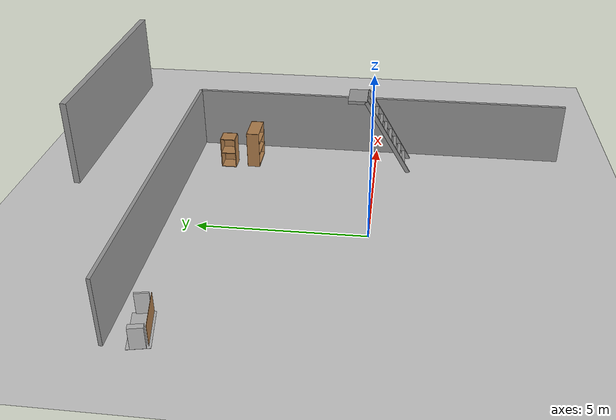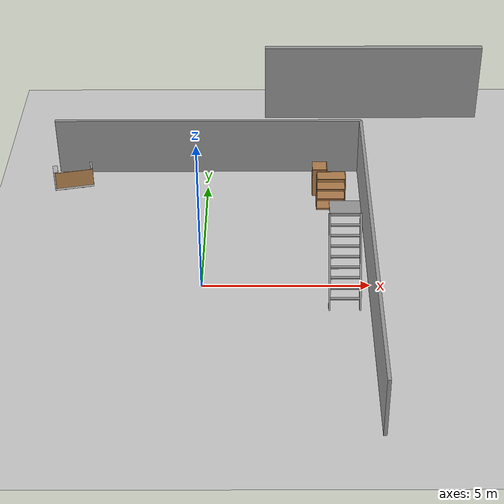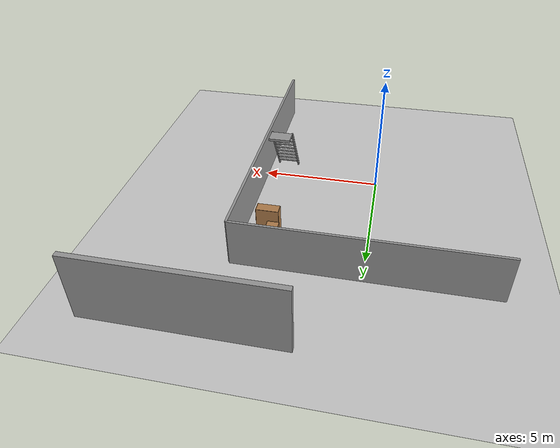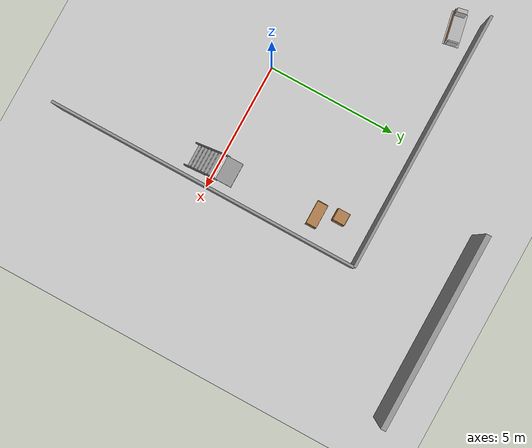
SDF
<sdf version="1.6">
 <world name="default">
  <light name="sun" type="directional">
   <pose>0 0 10 0 -0 0</pose>
   <diffuse>0.8 0.8 0.8 1</diffuse>
   <specular>0.2 0.2 0.2 1</specular>
   <attenuation>
    <range>1000</range>
    <constant>0.9</constant>
    <linear>0.01</linear>
    <quadratic>0.001</quadratic>
   </attenuation>
   <direction>-0.5 0.1 -0.9</direction>
  </light>
  <model name="ground_plane">
   <static>1</static>
   <link name="link">
    <collision name="collision">
     <geometry><plane><normal>0 0 1</normal><size>50 50</size></plane></geometry>
     <surface><friction><ode><mu>100</mu><mu2>50</mu2></ode></friction></surface>
    </collision>
    <visual name="visual">
     <cast_shadows>0</cast_shadows>
     <geometry><plane><normal>0 0 1</normal><size>100 100</size></plane></geometry>
     <material>
      <script><uri>file://media/materials/scripts/gazebo.material</uri><name>Gazebo/Grey</name></script>
     </material>
    </visual>
    <velocity_decay><linear>0</linear><angular>0</angular></velocity_decay>
   </link>
  </model>
  <physics name="default_physics" default="0" type="ode">
   <max_step_size>0.001</max_step_size>
   <real_time_factor>1</real_time_factor>
   <real_time_update_rate>1000</real_time_update_rate>
  </physics>
  <scene><ambient>0.4 0.4 0.4 1</ambient><background>0.7 0.7 0.7 1</background><shadows>0</shadows></scene>
  <model name="grey_wall_2">
   <static>1</static>
   <link name="link">
    <pose>0 6 1 0 -0 0</pose>
    <collision name="collision"><geometry><box><size>10 0.1 2</size></box></geometry></collision>
    <visual name="visual">
     <cast_shadows>0</cast_shadows>
     <geometry><box><size>10 0.1 2</size></box></geometry>
     <material>
      <script>
       <uri>model://grey_wall/materials/scripts</uri>
       <uri>model://grey_wall/materials/textures</uri>
       <name>vrc/grey_wall</name>
      </script>
     </material>
    </visual>
    <velocity_decay><linear>0</linear><angular>0</angular></velocity_decay>
   </link>
  </model>
  <model name="grey_wall_4">
   <static>1</static>
   <link name="link">
    <pose>5 0 1 0 -0 1.571</pose>
    <collision name="collision"><geometry><box><size>12 0.1 2</size></box></geometry></collision>
    <visual name="visual">
     <cast_shadows>0</cast_shadows>
     <geometry><box><size>12 0.1 2</size></box></geometry>
     <material>
      <script>
       <uri>model://grey_wall/materials/scripts</uri>
       <uri>model://grey_wall/materials/textures</uri>
       <name>vrc/grey_wall</name>
      </script>
     </material>
    </visual>
    <velocity_decay><linear>0</linear><angular>0</angular></velocity_decay>
   </link>
  </model>
  <spherical_coordinates>
   <surface_model>EARTH_WGS84</surface_model>
   <latitude_deg>0</latitude_deg>
   <longitude_deg>0</longitude_deg>
   <elevation>0</elevation>
   <heading_deg>0</heading_deg>
  </spherical_coordinates>
  <gravity>0 0 -9.8</gravity>
  <magnetic_field>6e-06 2.3e-05 -4.2e-05</magnetic_field>
  <atmosphere type="adiabatic"/>
  <model name="bookshelf">
   <static>1</static>
   <link name="link">
    <inertial><mass>1</mass></inertial>
    <collision name="back">
     <pose>0 0.005 0.6 0 -0 0</pose>
     <geometry><box><size>0.9 0.01 1.2</size></box></geometry>
    </collision>
    <visual name="visual1">
     <pose>0 0.005 0.6 0 -0 0</pose>
     <geometry><box><size>0.9 0.01 1.2</size></box></geometry>
     <material>
      <script><uri>file://media/materials/scripts/gazebo.material</uri><name>Gazebo/Wood</name></script>
     </material>
    </visual>
    <collision name="left_side">
     <pose>0.45 -0.195 0.6 0 -0 0</pose>
     <geometry><box><size>0.02 0.4 1.2</size></box></geometry>
    </collision>
    <visual name="visual2">
     <pose>0.45 -0.195 0.6 0 -0 0</pose>
     <geometry><box><size>0.02 0.4 1.2</size></box></geometry>
     <material>
      <script><uri>file://media/materials/scripts/gazebo.material</uri><name>Gazebo/Wood</name></script>
     </material>
    </visual>
    <collision name="right_side">
     <pose>-0.45 -0.195 0.6 0 -0 0</pose>
     <geometry><box><size>0.02 0.4 1.2</size></box></geometry>
    </collision>
    <visual name="visual3">
     <pose>-0.45 -0.195 0.6 0 -0 0</pose>
     <geometry><box><size>0.02 0.4 1.2</size></box></geometry>
     <material>
      <script><uri>file://media/materials/scripts/gazebo.material</uri><name>Gazebo/Wood</name></script>
     </material>
    </visual>
    <collision name="bottom">
     <pose>0 -0.195 0.03 0 -0 0</pose>
     <geometry><box><size>0.88 0.4 0.06</size></box></geometry>
    </collision>
    <visual name="visual4">
     <pose>0 -0.195 0.03 0 -0 0</pose>
     <geometry><box><size>0.88 0.4 0.06</size></box></geometry>
     <material>
      <script><uri>file://media/materials/scripts/gazebo.material</uri><name>Gazebo/Wood</name></script>
     </material>
    </visual>
    <collision name="top">
     <pose>0 -0.195 1.19 0 -0 0</pose>
     <geometry><box><size>0.88 0.4 0.02</size></box></geometry>
    </collision>
    <visual name="visual5">
     <pose>0 -0.195 1.19 0 -0 0</pose>
     <geometry><box><size>0.88 0.4 0.02</size></box></geometry>
     <material>
      <script><uri>file://media/materials/scripts/gazebo.material</uri><name>Gazebo/Wood</name></script>
     </material>
    </visual>
    <collision name="low_shelf">
     <pose>0 -0.195 0.43 0 -0 0</pose>
     <geometry><box><size>0.88 0.4 0.02</size></box></geometry>
    </collision>
    <visual name="visual6">
     <pose>0 -0.195 0.43 0 -0 0</pose>
     <geometry><box><size>0.88 0.4 0.02</size></box></geometry>
     <material>
      <script><uri>file://media/materials/scripts/gazebo.material</uri><name>Gazebo/Wood</name></script>
     </material>
    </visual>
    <collision name="high_shelf">
     <pose>0 -0.195 0.8 0 -0 0</pose>
     <geometry><box><size>0.88 0.4 0.02</size></box></geometry>
    </collision>
    <visual name="visual7">
     <pose>0 -0.195 0.8 0 -0 0</pose>
     <geometry><box><size>0.88 0.4 0.02</size></box></geometry>
     <material>
      <script><uri>file://media/materials/scripts/gazebo.material</uri><name>Gazebo/Wood</name></script>
     </material>
    </visual>
   </link>
   <pose>3.97283 4.19076 0 0 -0 0</pose>
  </model>
  <model name="cabinet">
   <static>1</static>
   <link name="cabinet_bottom_plate">
    <inertial>
     <pose>0 0 -1 0 -0 0</pose>
     <inertia><ixx>2.05</ixx><ixy>0</ixy><ixz>0</ixz><iyy>2.05</iyy><iyz>0</iyz><izz>2.05</izz></inertia>
     <mass>25</mass>
    </inertial>
    <collision name="cabinet_bottom_plate_geom">
     <pose>0 0 0.01 0 -0 0</pose>
     <geometry><box><size>0.45 0.45 0.02</size></box></geometry>
    </collision>
    <visual name="cabinet_bottom_plate_geom_visual">
     <pose>0 0 0.01 0 -0 0</pose>
     <geometry><box><size>0.45 0.45 0.02</size></box></geometry>
     <material>
      <script><uri>file://media/materials/scripts/gazebo.material</uri><name>Gazebo/Wood</name></script>
     </material>
    </visual>
    <collision name="cabinet_bottom_plate_geom_cabinet_back_plate">
     <pose>0.235 0 0.51 0 -0 0</pose>
     <geometry><box><size>0.02 0.45 1.02</size></box></geometry>
    </collision>
    <visual name="cabinet_bottom_plate_geom_cabinet_back_plate_visual">
     <pose>0.235 0 0.51 0 -0 0</pose>
     <geometry><box><size>0.02 0.45 1.02</size></box></geometry>
     <material>
      <script><uri>file://media/materials/scripts/gazebo.material</uri><name>Gazebo/Wood</name></script>
     </material>
    </visual>
    <collision name="cabinet_bottom_plate_geom_cabinet_left_plate">
     <pose>0 0.235 0.51 0 -0 0</pose>
     <geometry><box><size>0.45 0.02 1.02</size></box></geometry>
    </collision>
    <visual name="cabinet_bottom_plate_geom_cabinet_left_plate_visual">
     <pose>0 0.235 0.51 0 -0 0</pose>
     <geometry><box><size>0.45 0.02 1.02</size></box></geometry>
     <material>
      <script><uri>file://media/materials/scripts/gazebo.material</uri><name>Gazebo/Wood</name></script>
     </material>
    </visual>
    <collision name="cabinet_bottom_plate_geom_cabinet_middle_plate">
     <pose>0 0 0.51 0 -0 0</pose>
     <geometry><box><size>0.45 0.45 0.02</size></box></geometry>
    </collision>
    <visual name="cabinet_bottom_plate_geom_cabinet_middle_plate_visual">
     <pose>0 0 0.51 0 -0 0</pose>
     <geometry><box><size>0.45 0.45 0.02</size></box></geometry>
     <material>
      <script><uri>file://media/materials/scripts/gazebo.material</uri><name>Gazebo/Wood</name></script>
     </material>
    </visual>
    <collision name="cabinet_bottom_plate_geom_cabinet_right_plate">
     <pose>0 -0.235 0.51 0 -0 0</pose>
     <geometry><box><size>0.45 0.02 1.02</size></box></geometry>
    </collision>
    <visual name="cabinet_bottom_plate_geom_cabinet_right_plate_visual">
     <pose>0 -0.235 0.51 0 -0 0</pose>
     <geometry><box><size>0.45 0.02 1.02</size></box></geometry>
     <material>
      <script><uri>file://media/materials/scripts/gazebo.material</uri><name>Gazebo/Wood</name></script>
     </material>
    </visual>
    <collision name="cabinet_bottom_plate_geom_cabinet_top_plate">
     <pose>0 0 1.01 0 -0 0</pose>
     <geometry><box><size>0.45 0.45 0.02</size></box></geometry>
    </collision>
    <visual name="cabinet_bottom_plate_geom_cabinet_top_plate_visual">
     <pose>0 0 1.01 0 -0 0</pose>
     <geometry><box><size>0.45 0.45 0.02</size></box></geometry>
     <material>
      <script><uri>file://media/materials/scripts/gazebo.material</uri><name>Gazebo/Wood</name></script>
     </material>
    </visual>
   </link>
   <pose>3.62682 4.80289 0 0 -0 0</pose>
  </model>
  <model name="frc2016_sallyport">
   <link name="base">
    <inertial>
     <mass>50</mass>
     <pose>0 0 0.35406 0 -0 0</pose>
     <inertia><ixx>0.727808</ixx><ixy>0</ixy><ixz>0</ixz><iyy>1.77488</iyy><iyz>0</iyz><izz>1.64109</izz></inertia>
    </inertial>
    <visual name="platform">
     <pose>0 0 0.06974 0 -0 0</pose>
     <geometry><box><size>1.27 0.5969 0.003175</size></box></geometry>
    </visual>
    <collision name="platform">
     <pose>0 0 0.06974 0 -0 0</pose>
     <geometry><box><size>1.27 0.5969 0.003175</size></box></geometry>
    </collision>
    <visual name="left_column">
     <pose>-0.5588 0.00318 0.38876 0 -0 0</pose>
     <geometry><box><size>0.1524 0.38735 0.635</size></box></geometry>
    </visual>
    <collision name="left_column">
     <pose>-0.5588 0.00318 0.38876 0 -0 0</pose>
     <geometry><box><size>0.1524 0.38735 0.635</size></box></geometry>
    </collision>
    <visual name="right_column">
     <pose>0.6096 0.00635 0.38876 0 -0 0</pose>
     <geometry><box><size>0.0508 0.381 0.635</size></box></geometry>
    </visual>
    <collision name="right_column">
     <pose>0.6096 0.00635 0.38876 0 -0 0</pose>
     <geometry><box><size>0.0508 0.381 0.635</size></box></geometry>
    </collision>
    <visual name="castor1">
     <pose>-0.45886 0.15389 0.03487 0 -0 0</pose>
     <geometry><sphere><radius>0.03487</radius></sphere></geometry>
    </visual>
    <collision name="castor1">
     <pose>-0.45886 0.15389 0.03487 0 -0 0</pose>
     <geometry><sphere><radius>0.03487</radius></sphere></geometry>
    </collision>
    <visual name="castor2">
     <pose>-0.28117 -0.22559 0.03487 0 -0 0</pose>
     <geometry><sphere><radius>0.03487</radius></sphere></geometry>
    </visual>
    <collision name="castor2">
     <pose>-0.28117 -0.22559 0.03487 0 -0 0</pose>
     <geometry><sphere><radius>0.03487</radius></sphere></geometry>
    </collision>
    <visual name="castor3">
     <pose>0.27933 -0.2272 0.03487 0 -0 0</pose>
     <geometry><sphere><radius>0.03487</radius></sphere></geometry>
    </visual>
    <collision name="castor3">
     <pose>0.27933 -0.2272 0.03487 0 -0 0</pose>
     <geometry><sphere><radius>0.03487</radius></sphere></geometry>
    </collision>
    <visual name="castor4">
     <pose>0.4571 0.15424 0.03487 0 -0 0</pose>
     <geometry><sphere><radius>0.03487</radius></sphere></geometry>
    </visual>
    <collision name="castor4">
     <pose>0.4571 0.15424 0.03487 0 -0 0</pose>
     <geometry><sphere><radius>0.03487</radius></sphere></geometry>
    </collision>
   </link>
   <link name="door">
    <pose>0.02255 -0.24321 0.40332 0 -0 0</pose>
    <inertial>
     <pose>0 0 0 -1.5707 0 0</pose>
     <mass>2</mass>
     <inertia>
      <ixx>0.0619421</ixx>
      <ixy>0</ixy>
      <ixz>0</ixz>
      <iyy>0.246462</iyy>
      <iyz>0</iyz>
      <izz>0.30839</izz>
     </inertia>
    </inertial>
    <visual name="visual">
     <geometry><box><size>1.21603 0.00635 0.6096</size></box></geometry>
     <material><script><name>Gazebo/WoodFloor</name><uri>__default__</uri></script></material>
    </visual>
    <collision name="collision"><geometry><box><size>1.21603 0.00635 0.6096</size></box></geometry></collision>
   </link>
   <joint name="door_joint" type="revolute">
    <pose>-0.608015 0 0 0 -0 0</pose>
    <parent>base</parent>
    <child>door</child>
    <axis>
     <xyz>0 0 1</xyz>
     <limit><lower>-3.1415</lower><upper>0</upper></limit>
     <use_parent_model_frame>0</use_parent_model_frame>
     <dynamics><spring_reference>0</spring_reference><spring_stiffness>0</spring_stiffness></dynamics>
    </axis>
   </joint>
   <pose>-4.44916 5.1881 -3e-06 -5e-06 5e-06 0.201814</pose>
  </model>
  <model name="grey_wall">
   <static>1</static>
   <link name="link">
    <pose>0 0 1.4 0 -0 0</pose>
    <collision name="collision"><geometry><box><size>7.5 0.2 2.8</size></box></geometry></collision>
    <visual name="visual">
     <cast_shadows>0</cast_shadows>
     <geometry><box><size>7.5 0.2 2.8</size></box></geometry>
     <material>
      <script>
       <uri>model://grey_wall/materials/scripts</uri>
       <uri>model://grey_wall/materials/textures</uri>
       <name>vrc/grey_wall</name>
      </script>
     </material>
    </visual>
   </link>
   <pose>5.61337 9.4084 0 0 -0 0</pose>
  </model>
  <model name="ladder_60deg_0rails">
   <static>1</static>
   <link name="step0">
    <pose>0 0.15396 0.266667 0 -0 0</pose>
    <inertial>
     <mass>9.75482</mass>
     <inertia>
      <ixx>0.00957124</ixx>
      <iyy>0.65963</iyy>
      <izz>0.666842</izz>
      <ixy>0</ixy>
      <ixz>0</ixz>
      <iyz>0</iyz>
     </inertia>
    </inertial>
    <collision name="collision"><geometry><box><size>0.9 0.1016 0.0381</size></box></geometry></collision>
    <visual name="visual">
     <geometry><box><size>0.9 0.1016 0.0381</size></box></geometry>
     <material>
      <script><uri>file://media/materials/scripts/gazebo.material</uri><name>Gazebo/Grey</name></script>
     </material>
    </visual>
   </link>
   <link name="step1">
    <pose>0 0.30792 0.533333 0 -0 0</pose>
    <inertial>
     <mass>9.75482</mass>
     <inertia>
      <ixx>0.00957124</ixx>
      <iyy>0.65963</iyy>
      <izz>0.666842</izz>
      <ixy>0</ixy>
      <ixz>0</ixz>
      <iyz>0</iyz>
     </inertia>
    </inertial>
    <collision name="collision"><geometry><box><size>0.9 0.1016 0.0381</size></box></geometry></collision>
    <visual name="visual">
     <geometry><box><size>0.9 0.1016 0.0381</size></box></geometry>
     <material>
      <script><uri>file://media/materials/scripts/gazebo.material</uri><name>Gazebo/Grey</name></script>
     </material>
    </visual>
   </link>
   <link name="step2">
    <pose>0 0.46188 0.8 0 -0 0</pose>
    <inertial>
     <mass>9.75482</mass>
     <inertia>
      <ixx>0.00957124</ixx>
      <iyy>0.65963</iyy>
      <izz>0.666842</izz>
      <ixy>0</ixy>
      <ixz>0</ixz>
      <iyz>0</iyz>
     </inertia>
    </inertial>
    <collision name="collision"><geometry><box><size>0.9 0.1016 0.0381</size></box></geometry></collision>
    <visual name="visual">
     <geometry><box><size>0.9 0.1016 0.0381</size></box></geometry>
     <material>
      <script><uri>file://media/materials/scripts/gazebo.material</uri><name>Gazebo/Grey</name></script>
     </material>
    </visual>
   </link>
   <link name="step3">
    <pose>0 0.61584 1.06667 0 -0 0</pose>
    <inertial>
     <mass>9.75482</mass>
     <inertia>
      <ixx>0.00957124</ixx>
      <iyy>0.65963</iyy>
      <izz>0.666842</izz>
      <ixy>0</ixy>
      <ixz>0</ixz>
      <iyz>0</iyz>
     </inertia>
    </inertial>
    <collision name="collision"><geometry><box><size>0.9 0.1016 0.0381</size></box></geometry></collision>
    <visual name="visual">
     <geometry><box><size>0.9 0.1016 0.0381</size></box></geometry>
     <material>
      <script><uri>file://media/materials/scripts/gazebo.material</uri><name>Gazebo/Grey</name></script>
     </material>
    </visual>
   </link>
   <link name="step4">
    <pose>0 0.7698 1.33333 0 -0 0</pose>
    <inertial>
     <mass>9.75482</mass>
     <inertia>
      <ixx>0.00957124</ixx>
      <iyy>0.65963</iyy>
      <izz>0.666842</izz>
      <ixy>0</ixy>
      <ixz>0</ixz>
      <iyz>0</iyz>
     </inertia>
    </inertial>
    <collision name="collision"><geometry><box><size>0.9 0.1016 0.0381</size></box></geometry></collision>
    <visual name="visual">
     <geometry><box><size>0.9 0.1016 0.0381</size></box></geometry>
     <material>
      <script><uri>file://media/materials/scripts/gazebo.material</uri><name>Gazebo/Grey</name></script>
     </material>
    </visual>
   </link>
   <link name="step5">
    <pose>0 0.92376 1.6 0 -0 0</pose>
    <inertial>
     <mass>9.75482</mass>
     <inertia>
      <ixx>0.00957124</ixx>
      <iyy>0.65963</iyy>
      <izz>0.666842</izz>
      <ixy>0</ixy>
      <ixz>0</ixz>
      <iyz>0</iyz>
     </inertia>
    </inertial>
    <collision name="collision"><geometry><box><size>0.9 0.1016 0.0381</size></box></geometry></collision>
    <visual name="visual">
     <geometry><box><size>0.9 0.1016 0.0381</size></box></geometry>
     <material>
      <script><uri>file://media/materials/scripts/gazebo.material</uri><name>Gazebo/Grey</name></script>
     </material>
    </visual>
   </link>
   <link name="step6">
    <pose>0 1.07772 1.86667 0 -0 0</pose>
    <inertial>
     <mass>9.75482</mass>
     <inertia>
      <ixx>0.00957124</ixx>
      <iyy>0.65963</iyy>
      <izz>0.666842</izz>
      <ixy>0</ixy>
      <ixz>0</ixz>
      <iyz>0</iyz>
     </inertia>
    </inertial>
    <collision name="collision"><geometry><box><size>0.9 0.1016 0.0381</size></box></geometry></collision>
    <visual name="visual">
     <geometry><box><size>0.9 0.1016 0.0381</size></box></geometry>
     <material>
      <script><uri>file://media/materials/scripts/gazebo.material</uri><name>Gazebo/Grey</name></script>
     </material>
    </visual>
   </link>
   <link name="step7">
    <pose>0 1.23168 2.13333 0 -0 0</pose>
    <inertial>
     <mass>9.75482</mass>
     <inertia>
      <ixx>0.00957124</ixx>
      <iyy>0.65963</iyy>
      <izz>0.666842</izz>
      <ixy>0</ixy>
      <ixz>0</ixz>
      <iyz>0</iyz>
     </inertia>
    </inertial>
    <collision name="collision"><geometry><box><size>0.9 0.1016 0.0381</size></box></geometry></collision>
    <visual name="visual">
     <geometry><box><size>0.9 0.1016 0.0381</size></box></geometry>
     <material>
      <script><uri>file://media/materials/scripts/gazebo.material</uri><name>Gazebo/Grey</name></script>
     </material>
    </visual>
   </link>
   <link name="landing">
    <pose>0 1.68564 2.4 0 -0 0</pose>
    <inertial>
     <mass>57.6072</mass>
     <inertia><ixx>1.73518</ixx><iyy>3.89545</iyy><izz>5.6167</izz><ixy>0</ixy><ixz>0</ixz><iyz>0</iyz></inertia>
    </inertial>
    <collision name="collision"><geometry><box><size>0.9 0.6 0.1016</size></box></geometry></collision>
    <visual name="visual">
     <geometry><box><size>0.9 0.6 0.1016</size></box></geometry>
     <material>
      <script><uri>file://media/materials/scripts/gazebo.material</uri><name>Gazebo/Grey</name></script>
     </material>
    </visual>
   </link>
   <link name="left_side_wall">
    <pose>-0.45 0.69282 1.2 1.0472 -0 0</pose>
    <collision name="collision"><geometry><box><size>0.0508 2.85128 0.13</size></box></geometry></collision>
    <visual name="visual">
     <geometry><box><size>0.0508 2.85128 0.13</size></box></geometry>
     <material>
      <script><uri>file://media/materials/scripts/gazebo.material</uri><name>Gazebo/Grey</name></script>
     </material>
    </visual>
   </link>
   <link name="right_side_wall">
    <pose>0.45 0.69282 1.2 1.0472 -0 0</pose>
    <collision name="collision"><geometry><box><size>0.0508 2.85128 0.13</size></box></geometry></collision>
    <visual name="visual">
     <geometry><box><size>0.0508 2.85128 0.13</size></box></geometry>
     <material>
      <script><uri>file://media/materials/scripts/gazebo.material</uri><name>Gazebo/Grey</name></script>
     </material>
    </visual>
   </link>
   <pose>4.1993 -1.05008 0 0 -0 0</pose>
  </model>
 </world>
</sdf>
